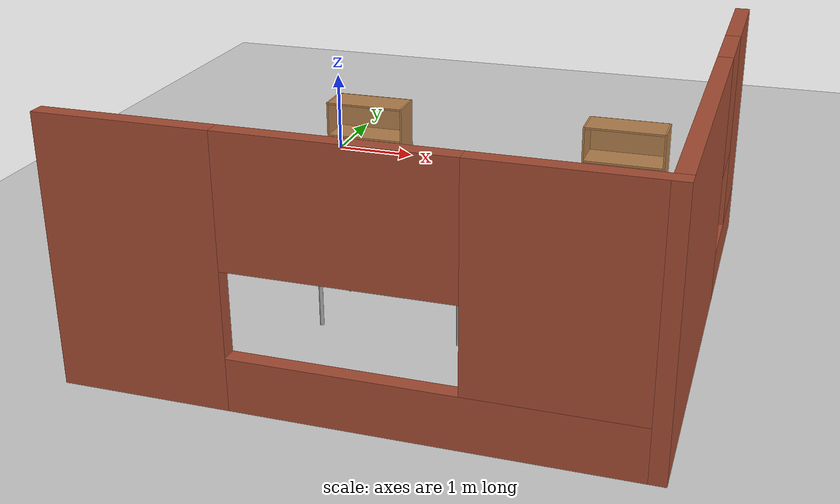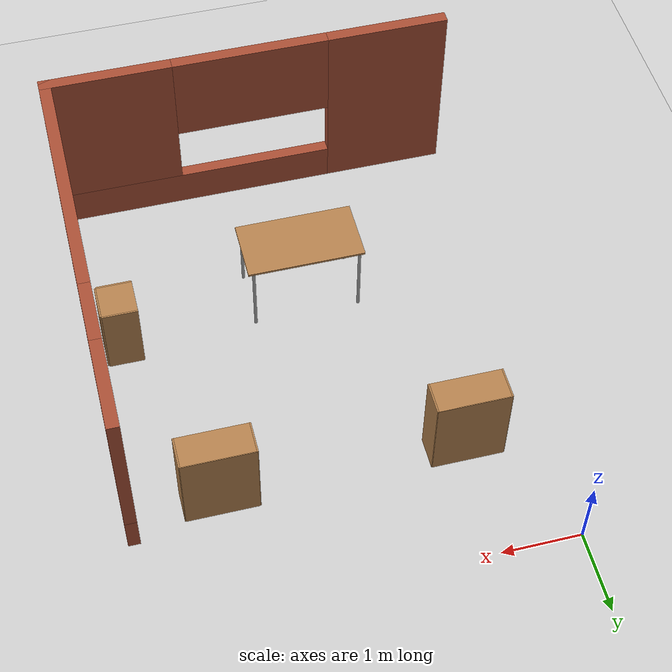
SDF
<sdf version="1.7">
 <world name="default">
  <model name="ground_plane">
   <static>1</static>
   <link name="link">
    <collision name="collision">
     <geometry><plane><normal>0 0 1</normal><size>100 100</size></plane></geometry>
     <surface>
      <contact><collide_bitmask>65535</collide_bitmask></contact>
      <friction><ode><mu>100</mu><mu2>50</mu2></ode></friction>
     </surface>
    </collision>
    <visual name="visual">
     <cast_shadows>0</cast_shadows>
     <geometry><plane><normal>0 0 1</normal><size>100 100</size></plane></geometry>
     <material>
      <script><uri>file://media/materials/scripts/gazebo.material</uri><name>Gazebo/Grey</name></script>
     </material>
    </visual>
   </link>
  </model>
  <model name="bookshelf">
   <static>1</static>
   <link name="link">
    <inertial><mass>1</mass></inertial>
    <collision name="back">
     <pose>0 0.005 0.6 0 -0 0</pose>
     <geometry><box><size>0.9 0.01 1.2</size></box></geometry>
    </collision>
    <visual name="visual1">
     <pose>0 0.005 0.6 0 -0 0</pose>
     <geometry><box><size>0.9 0.01 1.2</size></box></geometry>
     <material>
      <script><uri>file://media/materials/scripts/gazebo.material</uri><name>Gazebo/Wood</name></script>
     </material>
    </visual>
    <collision name="left_side">
     <pose>0.45 -0.195 0.6 0 -0 0</pose>
     <geometry><box><size>0.02 0.4 1.2</size></box></geometry>
    </collision>
    <visual name="visual2">
     <pose>0.45 -0.195 0.6 0 -0 0</pose>
     <geometry><box><size>0.02 0.4 1.2</size></box></geometry>
     <material>
      <script><uri>file://media/materials/scripts/gazebo.material</uri><name>Gazebo/Wood</name></script>
     </material>
    </visual>
    <collision name="right_side">
     <pose>-0.45 -0.195 0.6 0 -0 0</pose>
     <geometry><box><size>0.02 0.4 1.2</size></box></geometry>
    </collision>
    <visual name="visual3">
     <pose>-0.45 -0.195 0.6 0 -0 0</pose>
     <geometry><box><size>0.02 0.4 1.2</size></box></geometry>
     <material>
      <script><uri>file://media/materials/scripts/gazebo.material</uri><name>Gazebo/Wood</name></script>
     </material>
    </visual>
    <collision name="bottom">
     <pose>0 -0.195 0.03 0 -0 0</pose>
     <geometry><box><size>0.88 0.4 0.06</size></box></geometry>
    </collision>
    <visual name="visual4">
     <pose>0 -0.195 0.03 0 -0 0</pose>
     <geometry><box><size>0.88 0.4 0.06</size></box></geometry>
     <material>
      <script><uri>file://media/materials/scripts/gazebo.material</uri><name>Gazebo/Wood</name></script>
     </material>
    </visual>
    <collision name="top">
     <pose>0 -0.195 1.19 0 -0 0</pose>
     <geometry><box><size>0.88 0.4 0.02</size></box></geometry>
    </collision>
    <visual name="visual5">
     <pose>0 -0.195 1.19 0 -0 0</pose>
     <geometry><box><size>0.88 0.4 0.02</size></box></geometry>
     <material>
      <script><uri>file://media/materials/scripts/gazebo.material</uri><name>Gazebo/Wood</name></script>
     </material>
    </visual>
    <collision name="low_shelf">
     <pose>0 -0.195 0.43 0 -0 0</pose>
     <geometry><box><size>0.88 0.4 0.02</size></box></geometry>
    </collision>
    <visual name="visual6">
     <pose>0 -0.195 0.43 0 -0 0</pose>
     <geometry><box><size>0.88 0.4 0.02</size></box></geometry>
     <material>
      <script><uri>file://media/materials/scripts/gazebo.material</uri><name>Gazebo/Wood</name></script>
     </material>
    </visual>
    <collision name="high_shelf">
     <pose>0 -0.195 0.8 0 -0 0</pose>
     <geometry><box><size>0.88 0.4 0.02</size></box></geometry>
    </collision>
    <visual name="visual7">
     <pose>0 -0.195 0.8 0 -0 0</pose>
     <geometry><box><size>0.88 0.4 0.02</size></box></geometry>
     <material>
      <script><uri>file://media/materials/scripts/gazebo.material</uri><name>Gazebo/Wood</name></script>
     </material>
    </visual>
   </link>
   <pose>0.993813 -1.31372 0 0 -0 0</pose>
  </model>
  <model name="bookshelf_0">
   <static>1</static>
   <link name="link">
    <inertial><mass>1</mass></inertial>
    <collision name="back">
     <pose>0 0.005 0.6 0 -0 0</pose>
     <geometry><box><size>0.9 0.01 1.2</size></box></geometry>
    </collision>
    <visual name="visual1">
     <pose>0 0.005 0.6 0 -0 0</pose>
     <geometry><box><size>0.9 0.01 1.2</size></box></geometry>
     <material>
      <script><uri>file://media/materials/scripts/gazebo.material</uri><name>Gazebo/Wood</name></script>
     </material>
    </visual>
    <collision name="left_side">
     <pose>0.45 -0.195 0.6 0 -0 0</pose>
     <geometry><box><size>0.02 0.4 1.2</size></box></geometry>
    </collision>
    <visual name="visual2">
     <pose>0.45 -0.195 0.6 0 -0 0</pose>
     <geometry><box><size>0.02 0.4 1.2</size></box></geometry>
     <material>
      <script><uri>file://media/materials/scripts/gazebo.material</uri><name>Gazebo/Wood</name></script>
     </material>
    </visual>
    <collision name="right_side">
     <pose>-0.45 -0.195 0.6 0 -0 0</pose>
     <geometry><box><size>0.02 0.4 1.2</size></box></geometry>
    </collision>
    <visual name="visual3">
     <pose>-0.45 -0.195 0.6 0 -0 0</pose>
     <geometry><box><size>0.02 0.4 1.2</size></box></geometry>
     <material>
      <script><uri>file://media/materials/scripts/gazebo.material</uri><name>Gazebo/Wood</name></script>
     </material>
    </visual>
    <collision name="bottom">
     <pose>0 -0.195 0.03 0 -0 0</pose>
     <geometry><box><size>0.88 0.4 0.06</size></box></geometry>
    </collision>
    <visual name="visual4">
     <pose>0 -0.195 0.03 0 -0 0</pose>
     <geometry><box><size>0.88 0.4 0.06</size></box></geometry>
     <material>
      <script><uri>file://media/materials/scripts/gazebo.material</uri><name>Gazebo/Wood</name></script>
     </material>
    </visual>
    <collision name="top">
     <pose>0 -0.195 1.19 0 -0 0</pose>
     <geometry><box><size>0.88 0.4 0.02</size></box></geometry>
    </collision>
    <visual name="visual5">
     <pose>0 -0.195 1.19 0 -0 0</pose>
     <geometry><box><size>0.88 0.4 0.02</size></box></geometry>
     <material>
      <script><uri>file://media/materials/scripts/gazebo.material</uri><name>Gazebo/Wood</name></script>
     </material>
    </visual>
    <collision name="low_shelf">
     <pose>0 -0.195 0.43 0 -0 0</pose>
     <geometry><box><size>0.88 0.4 0.02</size></box></geometry>
    </collision>
    <visual name="visual6">
     <pose>0 -0.195 0.43 0 -0 0</pose>
     <geometry><box><size>0.88 0.4 0.02</size></box></geometry>
     <material>
      <script><uri>file://media/materials/scripts/gazebo.material</uri><name>Gazebo/Wood</name></script>
     </material>
    </visual>
    <collision name="high_shelf">
     <pose>0 -0.195 0.8 0 -0 0</pose>
     <geometry><box><size>0.88 0.4 0.02</size></box></geometry>
    </collision>
    <visual name="visual7">
     <pose>0 -0.195 0.8 0 -0 0</pose>
     <geometry><box><size>0.88 0.4 0.02</size></box></geometry>
     <material>
      <script><uri>file://media/materials/scripts/gazebo.material</uri><name>Gazebo/Wood</name></script>
     </material>
    </visual>
   </link>
   <pose>4.0161 -1.29459 0 0 -0 0</pose>
  </model>
  <model name="cabinet">
   <static>1</static>
   <link name="cabinet_bottom_plate">
    <inertial>
     <pose>0 0 -1 0 -0 0</pose>
     <inertia><ixx>2.05</ixx><ixy>0</ixy><ixz>0</ixz><iyy>2.05</iyy><iyz>0</iyz><izz>2.05</izz></inertia>
     <mass>25</mass>
    </inertial>
    <collision name="cabinet_bottom_plate_geom">
     <pose>0 0 0.01 0 -0 0</pose>
     <geometry><box><size>0.45 0.45 0.02</size></box></geometry>
    </collision>
    <visual name="cabinet_bottom_plate_geom_visual">
     <pose>0 0 0.01 0 -0 0</pose>
     <geometry><box><size>0.45 0.45 0.02</size></box></geometry>
     <material>
      <script><uri>file://media/materials/scripts/gazebo.material</uri><name>Gazebo/Wood</name></script>
     </material>
    </visual>
    <collision name="cabinet_bottom_plate_geom_cabinet_back_plate">
     <pose>0.235 0 0.51 0 -0 0</pose>
     <geometry><box><size>0.02 0.45 1.02</size></box></geometry>
    </collision>
    <visual name="cabinet_bottom_plate_geom_cabinet_back_plate_visual">
     <pose>0.235 0 0.51 0 -0 0</pose>
     <geometry><box><size>0.02 0.45 1.02</size></box></geometry>
     <material>
      <script><uri>file://media/materials/scripts/gazebo.material</uri><name>Gazebo/Wood</name></script>
     </material>
    </visual>
    <collision name="cabinet_bottom_plate_geom_cabinet_left_plate">
     <pose>0 0.235 0.51 0 -0 0</pose>
     <geometry><box><size>0.45 0.02 1.02</size></box></geometry>
    </collision>
    <visual name="cabinet_bottom_plate_geom_cabinet_left_plate_visual">
     <pose>0 0.235 0.51 0 -0 0</pose>
     <geometry><box><size>0.45 0.02 1.02</size></box></geometry>
     <material>
      <script><uri>file://media/materials/scripts/gazebo.material</uri><name>Gazebo/Wood</name></script>
     </material>
    </visual>
    <collision name="cabinet_bottom_plate_geom_cabinet_middle_plate">
     <pose>0 0 0.51 0 -0 0</pose>
     <geometry><box><size>0.45 0.45 0.02</size></box></geometry>
    </collision>
    <visual name="cabinet_bottom_plate_geom_cabinet_middle_plate_visual">
     <pose>0 0 0.51 0 -0 0</pose>
     <geometry><box><size>0.45 0.45 0.02</size></box></geometry>
     <material>
      <script><uri>file://media/materials/scripts/gazebo.material</uri><name>Gazebo/Wood</name></script>
     </material>
    </visual>
    <collision name="cabinet_bottom_plate_geom_cabinet_right_plate">
     <pose>0 -0.235 0.51 0 -0 0</pose>
     <geometry><box><size>0.45 0.02 1.02</size></box></geometry>
    </collision>
    <visual name="cabinet_bottom_plate_geom_cabinet_right_plate_visual">
     <pose>0 -0.235 0.51 0 -0 0</pose>
     <geometry><box><size>0.45 0.02 1.02</size></box></geometry>
     <material>
      <script><uri>file://media/materials/scripts/gazebo.material</uri><name>Gazebo/Wood</name></script>
     </material>
    </visual>
    <collision name="cabinet_bottom_plate_geom_cabinet_top_plate">
     <pose>0 0 1.01 0 -0 0</pose>
     <geometry><box><size>0.45 0.45 0.02</size></box></geometry>
    </collision>
    <visual name="cabinet_bottom_plate_geom_cabinet_top_plate_visual">
     <pose>0 0 1.01 0 -0 0</pose>
     <geometry><box><size>0.45 0.45 0.02</size></box></geometry>
     <material>
      <script><uri>file://media/materials/scripts/gazebo.material</uri><name>Gazebo/Wood</name></script>
     </material>
    </visual>
   </link>
   <pose>4.74463 -3.94895 0 0 -0 0</pose>
  </model>
  <model name="basic_house_model">
   <link name="Wall_20">
    <pose>3.5 -5.975 0 0 -0 0</pose>
    <visual name="Wall_20_Visual_0">
     <pose>-1.83971 0 1.25 0 -0 0</pose>
     <geometry><box><size>1.57058 0.15 2.5</size></box></geometry>
     <material>
      <script><uri>file://media/materials/scripts/gazebo.material</uri><name>Gazebo/Bricks</name></script>
      <ambient>1 1 1 1</ambient>
      <shader type="pixel"/>
     </material>
     <meta><layer>0</layer></meta>
    </visual>
    <visual name="Wall_20_Visual_1">
     <pose>0.785288 0 0.25 0 -0 0</pose>
     <geometry><box><size>3.67943 0.15 0.5</size></box></geometry>
     <material>
      <script><uri>file://media/materials/scripts/gazebo.material</uri><name>Gazebo/Bricks</name></script>
      <ambient>1 1 1 1</ambient>
      <shader type="pixel"/>
     </material>
     <meta><layer>0</layer></meta>
    </visual>
    <visual name="Wall_20_Visual_2">
     <pose>1.79171 0 1.5 0 -0 0</pose>
     <geometry><box><size>1.66657 0.15 2</size></box></geometry>
     <material>
      <script><uri>file://media/materials/scripts/gazebo.material</uri><name>Gazebo/Bricks</name></script>
      <ambient>1 1 1 1</ambient>
      <shader type="pixel"/>
     </material>
     <meta><layer>0</layer></meta>
    </visual>
    <visual name="Wall_20_Visual_3">
     <pose>-0.047998 0 1.9 0 -0 0</pose>
     <geometry><box><size>2.01285 0.15 1.2</size></box></geometry>
     <material>
      <script><uri>file://media/materials/scripts/gazebo.material</uri><name>Gazebo/Bricks</name></script>
      <ambient>1 1 1 1</ambient>
      <shader type="pixel"/>
     </material>
     <meta><layer>0</layer></meta>
    </visual>
    <collision name="Wall_20_Collision_0">
     <pose>-1.83971 0 1.25 0 -0 0</pose>
     <geometry><box><size>1.57058 0.15 2.5</size></box></geometry>
     <surface>
      <friction>
       <ode><mu>1</mu><mu2>1</mu2><fdir1>0 0 0</fdir1><slip1>0</slip1><slip2>0</slip2></ode>
       <torsional>
        <coefficient>1</coefficient>
        <patch_radius>0</patch_radius>
        <surface_radius>0</surface_radius>
        <use_patch_radius>1</use_patch_radius>
        <ode><slip>0</slip></ode>
       </torsional>
      </friction>
      <bounce><restitution_coefficient>0</restitution_coefficient><threshold>1e+06</threshold></bounce>
      <contact>
       <collide_without_contact>0</collide_without_contact>
       <collide_without_contact_bitmask>1</collide_without_contact_bitmask>
       <collide_bitmask>1</collide_bitmask>
       <ode>
        <soft_cfm>0</soft_cfm>
        <soft_erp>0.2</soft_erp>
        <kp>1e+13</kp>
        <kd>1</kd>
        <max_vel>0.01</max_vel>
        <min_depth>0</min_depth>
       </ode>
       <bullet>
        <split_impulse>1</split_impulse>
        <split_impulse_penetration_threshold>-0.01</split_impulse_penetration_threshold>
        <soft_cfm>0</soft_cfm>
        <soft_erp>0.2</soft_erp>
        <kp>1e+13</kp>
        <kd>1</kd>
       </bullet>
      </contact>
     </surface>
    </collision>
    <collision name="Wall_20_Collision_2">
     <pose>1.79171 0 1.5 0 -0 0</pose>
     <geometry><box><size>1.66657 0.15 2</size></box></geometry>
     <surface>
      <friction>
       <ode><mu>1</mu><mu2>1</mu2><fdir1>0 0 0</fdir1><slip1>0</slip1><slip2>0</slip2></ode>
       <torsional>
        <coefficient>1</coefficient>
        <patch_radius>0</patch_radius>
        <surface_radius>0</surface_radius>
        <use_patch_radius>1</use_patch_radius>
        <ode><slip>0</slip></ode>
       </torsional>
      </friction>
      <bounce><restitution_coefficient>0</restitution_coefficient><threshold>1e+06</threshold></bounce>
      <contact>
       <collide_without_contact>0</collide_without_contact>
       <collide_without_contact_bitmask>1</collide_without_contact_bitmask>
       <collide_bitmask>1</collide_bitmask>
       <ode>
        <soft_cfm>0</soft_cfm>
        <soft_erp>0.2</soft_erp>
        <kp>1e+13</kp>
        <kd>1</kd>
        <max_vel>0.01</max_vel>
        <min_depth>0</min_depth>
       </ode>
       <bullet>
        <split_impulse>1</split_impulse>
        <split_impulse_penetration_threshold>-0.01</split_impulse_penetration_threshold>
        <soft_cfm>0</soft_cfm>
        <soft_erp>0.2</soft_erp>
        <kp>1e+13</kp>
        <kd>1</kd>
       </bullet>
      </contact>
     </surface>
    </collision>
    <collision name="Wall_20_Collision_1">
     <pose>0.785288 0 0.25 0 -0 0</pose>
     <geometry><box><size>3.67943 0.15 0.5</size></box></geometry>
     <surface>
      <friction>
       <ode><mu>1</mu><mu2>1</mu2><fdir1>0 0 0</fdir1><slip1>0</slip1><slip2>0</slip2></ode>
       <torsional>
        <coefficient>1</coefficient>
        <patch_radius>0</patch_radius>
        <surface_radius>0</surface_radius>
        <use_patch_radius>1</use_patch_radius>
        <ode><slip>0</slip></ode>
       </torsional>
      </friction>
      <bounce><restitution_coefficient>0</restitution_coefficient><threshold>1e+06</threshold></bounce>
      <contact>
       <collide_without_contact>0</collide_without_contact>
       <collide_without_contact_bitmask>1</collide_without_contact_bitmask>
       <collide_bitmask>1</collide_bitmask>
       <ode>
        <soft_cfm>0</soft_cfm>
        <soft_erp>0.2</soft_erp>
        <kp>1e+13</kp>
        <kd>1</kd>
        <max_vel>0.01</max_vel>
        <min_depth>0</min_depth>
       </ode>
       <bullet>
        <split_impulse>1</split_impulse>
        <split_impulse_penetration_threshold>-0.01</split_impulse_penetration_threshold>
        <soft_cfm>0</soft_cfm>
        <soft_erp>0.2</soft_erp>
        <kp>1e+13</kp>
        <kd>1</kd>
       </bullet>
      </contact>
     </surface>
    </collision>
    <collision name="Wall_20_Collision_3">
     <pose>-0.047998 0 1.9 0 -0 0</pose>
     <geometry><box><size>2.01285 0.15 1.2</size></box></geometry>
     <surface>
      <friction>
       <ode><mu>1</mu><mu2>1</mu2><fdir1>0 0 0</fdir1><slip1>0</slip1><slip2>0</slip2></ode>
       <torsional>
        <coefficient>1</coefficient>
        <patch_radius>0</patch_radius>
        <surface_radius>0</surface_radius>
        <use_patch_radius>1</use_patch_radius>
        <ode><slip>0</slip></ode>
       </torsional>
      </friction>
      <bounce><restitution_coefficient>0</restitution_coefficient><threshold>1e+06</threshold></bounce>
      <contact>
       <collide_without_contact>0</collide_without_contact>
       <collide_without_contact_bitmask>1</collide_without_contact_bitmask>
       <collide_bitmask>1</collide_bitmask>
       <ode>
        <soft_cfm>0</soft_cfm>
        <soft_erp>0.2</soft_erp>
        <kp>1e+13</kp>
        <kd>1</kd>
        <max_vel>0.01</max_vel>
        <min_depth>0</min_depth>
       </ode>
       <bullet>
        <split_impulse>1</split_impulse>
        <split_impulse_penetration_threshold>-0.01</split_impulse_penetration_threshold>
        <soft_cfm>0</soft_cfm>
        <soft_erp>0.2</soft_erp>
        <kp>1e+13</kp>
        <kd>1</kd>
       </bullet>
      </contact>
     </surface>
    </collision>
   </link>
   <link name="Wall_21">
    <pose>6.05 -3.425 0 0 -0 1.5708</pose>
    <visual name="Wall_21_Visual_0">
     <pose>-0.987562 0 1.25 0 -0 0</pose>
     <geometry><box><size>3.27488 0.15 2.5</size></box></geometry>
     <material>
      <script><uri>file://media/materials/scripts/gazebo.material</uri><name>Gazebo/Bricks</name></script>
      <ambient>1 1 1 1</ambient>
      <shader type="pixel"/>
     </material>
     <meta><layer>0</layer></meta>
    </visual>
    <visual name="Wall_21_Visual_1">
     <pose>1.63744 0 0.25 0 -0 0</pose>
     <geometry><box><size>1.97512 0.15 0.5</size></box></geometry>
     <material>
      <script><uri>file://media/materials/scripts/gazebo.material</uri><name>Gazebo/Bricks</name></script>
      <ambient>1 1 1 1</ambient>
      <shader type="pixel"/>
     </material>
     <meta><layer>0</layer></meta>
    </visual>
    <visual name="Wall_21_Visual_2">
     <pose>2.03744 0 1.5 0 -0 0</pose>
     <geometry><box><size>1.17512 0.15 2</size></box></geometry>
     <material>
      <script><uri>file://media/materials/scripts/gazebo.material</uri><name>Gazebo/Bricks</name></script>
      <ambient>1 1 1 1</ambient>
      <shader type="pixel"/>
     </material>
     <meta><layer>0</layer></meta>
    </visual>
    <visual name="Wall_21_Visual_3">
     <pose>1.04988 0 1.9 0 -0 0</pose>
     <geometry><box><size>0.8 0.15 1.2</size></box></geometry>
     <material>
      <script><uri>file://media/materials/scripts/gazebo.material</uri><name>Gazebo/Bricks</name></script>
      <ambient>1 1 1 1</ambient>
      <shader type="pixel"/>
     </material>
     <meta><layer>0</layer></meta>
    </visual>
    <collision name="Wall_21_Collision_3">
     <pose>1.04988 0 1.9 0 -0 0</pose>
     <geometry><box><size>0.8 0.15 1.2</size></box></geometry>
     <surface>
      <friction>
       <ode><mu>1</mu><mu2>1</mu2><fdir1>0 0 0</fdir1><slip1>0</slip1><slip2>0</slip2></ode>
       <torsional>
        <coefficient>1</coefficient>
        <patch_radius>0</patch_radius>
        <surface_radius>0</surface_radius>
        <use_patch_radius>1</use_patch_radius>
        <ode><slip>0</slip></ode>
       </torsional>
      </friction>
      <bounce><restitution_coefficient>0</restitution_coefficient><threshold>1e+06</threshold></bounce>
      <contact>
       <collide_without_contact>0</collide_without_contact>
       <collide_without_contact_bitmask>1</collide_without_contact_bitmask>
       <collide_bitmask>1</collide_bitmask>
       <ode>
        <soft_cfm>0</soft_cfm>
        <soft_erp>0.2</soft_erp>
        <kp>1e+13</kp>
        <kd>1</kd>
        <max_vel>0.01</max_vel>
        <min_depth>0</min_depth>
       </ode>
       <bullet>
        <split_impulse>1</split_impulse>
        <split_impulse_penetration_threshold>-0.01</split_impulse_penetration_threshold>
        <soft_cfm>0</soft_cfm>
        <soft_erp>0.2</soft_erp>
        <kp>1e+13</kp>
        <kd>1</kd>
       </bullet>
      </contact>
     </surface>
    </collision>
    <collision name="Wall_21_Collision_0">
     <pose>-0.987562 0 1.25 0 -0 0</pose>
     <geometry><box><size>3.27488 0.15 2.5</size></box></geometry>
     <surface>
      <friction>
       <ode><mu>1</mu><mu2>1</mu2><fdir1>0 0 0</fdir1><slip1>0</slip1><slip2>0</slip2></ode>
       <torsional>
        <coefficient>1</coefficient>
        <patch_radius>0</patch_radius>
        <surface_radius>0</surface_radius>
        <use_patch_radius>1</use_patch_radius>
        <ode><slip>0</slip></ode>
       </torsional>
      </friction>
      <bounce><restitution_coefficient>0</restitution_coefficient><threshold>1e+06</threshold></bounce>
      <contact>
       <collide_without_contact>0</collide_without_contact>
       <collide_without_contact_bitmask>1</collide_without_contact_bitmask>
       <collide_bitmask>1</collide_bitmask>
       <ode>
        <soft_cfm>0</soft_cfm>
        <soft_erp>0.2</soft_erp>
        <kp>1e+13</kp>
        <kd>1</kd>
        <max_vel>0.01</max_vel>
        <min_depth>0</min_depth>
       </ode>
       <bullet>
        <split_impulse>1</split_impulse>
        <split_impulse_penetration_threshold>-0.01</split_impulse_penetration_threshold>
        <soft_cfm>0</soft_cfm>
        <soft_erp>0.2</soft_erp>
        <kp>1e+13</kp>
        <kd>1</kd>
       </bullet>
      </contact>
     </surface>
    </collision>
    <collision name="Wall_21_Collision_1">
     <pose>1.63744 0 0.25 0 -0 0</pose>
     <geometry><box><size>1.97512 0.15 0.5</size></box></geometry>
     <surface>
      <friction>
       <ode><mu>1</mu><mu2>1</mu2><fdir1>0 0 0</fdir1><slip1>0</slip1><slip2>0</slip2></ode>
       <torsional>
        <coefficient>1</coefficient>
        <patch_radius>0</patch_radius>
        <surface_radius>0</surface_radius>
        <use_patch_radius>1</use_patch_radius>
        <ode><slip>0</slip></ode>
       </torsional>
      </friction>
      <bounce><restitution_coefficient>0</restitution_coefficient><threshold>1e+06</threshold></bounce>
      <contact>
       <collide_without_contact>0</collide_without_contact>
       <collide_without_contact_bitmask>1</collide_without_contact_bitmask>
       <collide_bitmask>1</collide_bitmask>
       <ode>
        <soft_cfm>0</soft_cfm>
        <soft_erp>0.2</soft_erp>
        <kp>1e+13</kp>
        <kd>1</kd>
        <max_vel>0.01</max_vel>
        <min_depth>0</min_depth>
       </ode>
       <bullet>
        <split_impulse>1</split_impulse>
        <split_impulse_penetration_threshold>-0.01</split_impulse_penetration_threshold>
        <soft_cfm>0</soft_cfm>
        <soft_erp>0.2</soft_erp>
        <kp>1e+13</kp>
        <kd>1</kd>
       </bullet>
      </contact>
     </surface>
    </collision>
    <collision name="Wall_21_Collision_2">
     <pose>2.03744 0 1.5 0 -0 0</pose>
     <geometry><box><size>1.17512 0.15 2</size></box></geometry>
     <surface>
      <friction>
       <ode><mu>1</mu><mu2>1</mu2><fdir1>0 0 0</fdir1><slip1>0</slip1><slip2>0</slip2></ode>
       <torsional>
        <coefficient>1</coefficient>
        <patch_radius>0</patch_radius>
        <surface_radius>0</surface_radius>
        <use_patch_radius>1</use_patch_radius>
        <ode><slip>0</slip></ode>
       </torsional>
      </friction>
      <bounce><restitution_coefficient>0</restitution_coefficient><threshold>1e+06</threshold></bounce>
      <contact>
       <collide_without_contact>0</collide_without_contact>
       <collide_without_contact_bitmask>1</collide_without_contact_bitmask>
       <collide_bitmask>1</collide_bitmask>
       <ode>
        <soft_cfm>0</soft_cfm>
        <soft_erp>0.2</soft_erp>
        <kp>1e+13</kp>
        <kd>1</kd>
        <max_vel>0.01</max_vel>
        <min_depth>0</min_depth>
       </ode>
       <bullet>
        <split_impulse>1</split_impulse>
        <split_impulse_penetration_threshold>-0.01</split_impulse_penetration_threshold>
        <soft_cfm>0</soft_cfm>
        <soft_erp>0.2</soft_erp>
        <kp>1e+13</kp>
        <kd>1</kd>
       </bullet>
      </contact>
     </surface>
    </collision>
   </link>
   <static>1</static>
   <pose>-0.94361 -0.326911 0 0 -0 0</pose>
  </model>
  <model name="table">
   <static>1</static>
   <link name="link">
    <collision name="surface">
     <pose>0 0 1 0 -0 0</pose>
     <geometry><box><size>1.5 0.8 0.03</size></box></geometry>
     <surface><friction><ode><mu>0.6</mu><mu2>0.6</mu2></ode></friction></surface>
    </collision>
    <visual name="visual1">
     <pose>0 0 1 0 -0 0</pose>
     <geometry><box><size>1.5 0.8 0.03</size></box></geometry>
     <material>
      <script><uri>file://media/materials/scripts/gazebo.material</uri><name>Gazebo/Wood</name></script>
     </material>
    </visual>
    <collision name="front_left_legc">
     <pose>0.68 0.38 0.5 0 -0 0</pose>
     <geometry><cylinder><radius>0.02</radius><length>1</length></cylinder></geometry>
    </collision>
    <visual name="front_left_leg">
     <pose>0.68 0.38 0.5 0 -0 0</pose>
     <geometry><cylinder><radius>0.02</radius><length>1</length></cylinder></geometry>
     <material>
      <script><uri>file://media/materials/scripts/gazebo.material</uri><name>Gazebo/Grey</name></script>
     </material>
    </visual>
    <collision name="front_right_legc">
     <pose>0.68 -0.38 0.5 0 -0 0</pose>
     <geometry><cylinder><radius>0.02</radius><length>1</length></cylinder></geometry>
    </collision>
    <visual name="front_right_leg">
     <pose>0.68 -0.38 0.5 0 -0 0</pose>
     <geometry><cylinder><radius>0.02</radius><length>1</length></cylinder></geometry>
     <material>
      <script><uri>file://media/materials/scripts/gazebo.material</uri><name>Gazebo/Grey</name></script>
     </material>
    </visual>
    <collision name="back_right_legc">
     <pose>-0.68 -0.38 0.5 0 -0 0</pose>
     <geometry><cylinder><radius>0.02</radius><length>1</length></cylinder></geometry>
    </collision>
    <visual name="back_right_leg">
     <pose>-0.68 -0.38 0.5 0 -0 0</pose>
     <geometry><cylinder><radius>0.02</radius><length>1</length></cylinder></geometry>
     <material>
      <script><uri>file://media/materials/scripts/gazebo.material</uri><name>Gazebo/Grey</name></script>
     </material>
    </visual>
    <collision name="back_left_legc">
     <pose>-0.68 0.38 0.5 0 -0 0</pose>
     <geometry><cylinder><radius>0.02</radius><length>1</length></cylinder></geometry>
    </collision>
    <visual name="back_left_leg">
     <pose>-0.68 0.38 0.5 0 -0 0</pose>
     <geometry><cylinder><radius>0.02</radius><length>1</length></cylinder></geometry>
     <material>
      <script><uri>file://media/materials/scripts/gazebo.material</uri><name>Gazebo/Grey</name></script>
     </material>
    </visual>
   </link>
   <pose>2.34737 -4.32889 0 0 -0 0</pose>
  </model>
 </world>
</sdf>
